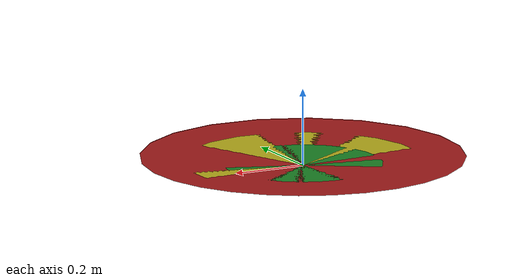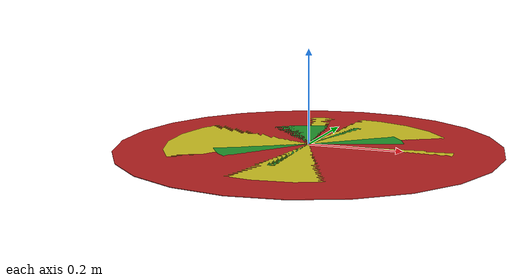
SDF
<?xml version='1.0'?>
<sdf version='1.6'>
  <model name='overlapping_circles'>
    <pose frame=''>0 0 0 0 -0 -1.5708</pose>
    <static>1</static>

    <!-- First circles -->
    <link name='circles'>
      <visual name='circle_1'>
        <pose frame=''>0 0 0.0005 0 -0 0</pose> <!-- Modify postion -->
        <geometry>
          <cylinder>
            <radius>0.4</radius> <!-- Modify size -->
            <length>0.001</length>
          </cylinder>
        </geometry>
        <material>
          <script>
            <uri>file://media/materials/scripts/gazebo.material</uri>
            <name>Gazebo/Red</name>
          </script>
          <ambient>1 0 0 1</ambient>
        </material>
      </visual>

      <!-- Second circles -->
      <visual name='circle_2'>
        <pose frame=''>0 0 0.0005 0 -0 0</pose> <!-- Modify postion -->
        <geometry>
          <cylinder>
            <radius>0.3</radius> <!-- Modify size -->
            <length>0.001</length>
          </cylinder>
        </geometry>
        <material>
          <script>
            <uri>file://media/materials/scripts/gazebo.material</uri>
            <name>Gazebo/Yellow</name>
          </script>
          <ambient>1 0 0 1</ambient>
        </material>
      </visual>

      <!-- Third circles -->
      <visual name='circle_3'>
        <pose frame=''>0 0 0.0005 0 -0 0</pose> <!-- Modify postion -->
        <geometry>
          <cylinder>
            <radius>0.2</radius> <!-- Modify size -->
            <length>0.001</length>
          </cylinder>
        </geometry>
        <material>
          <script>
            <uri>file://media/materials/scripts/gazebo.material</uri>
            <name>Gazebo/Green</name>-
          </script>
          <ambient>0 1 0 1</ambient>
        </material>
      </visual>
    </link>
  </model>
</sdf>
